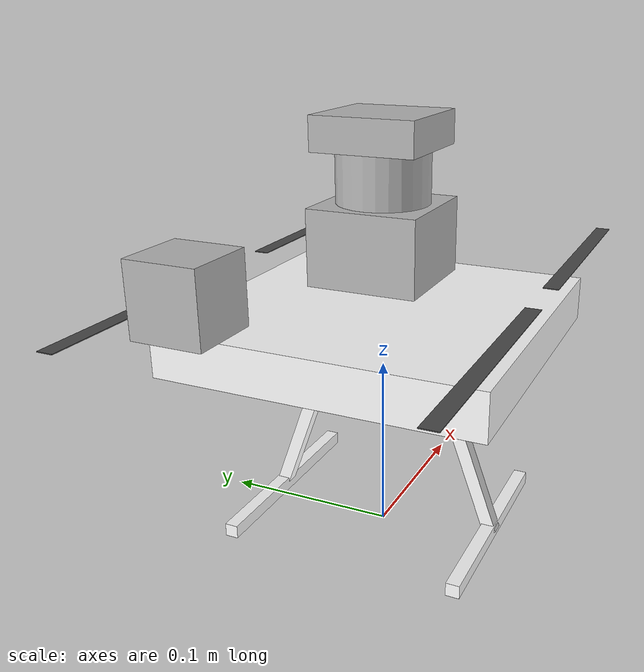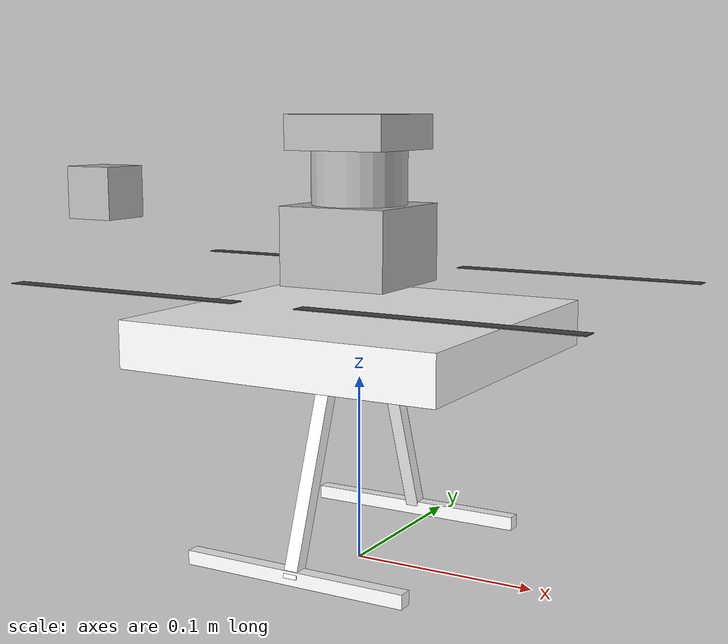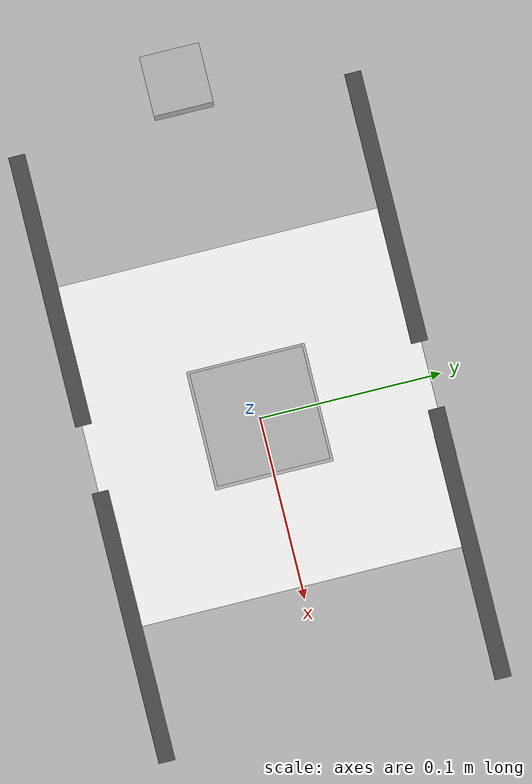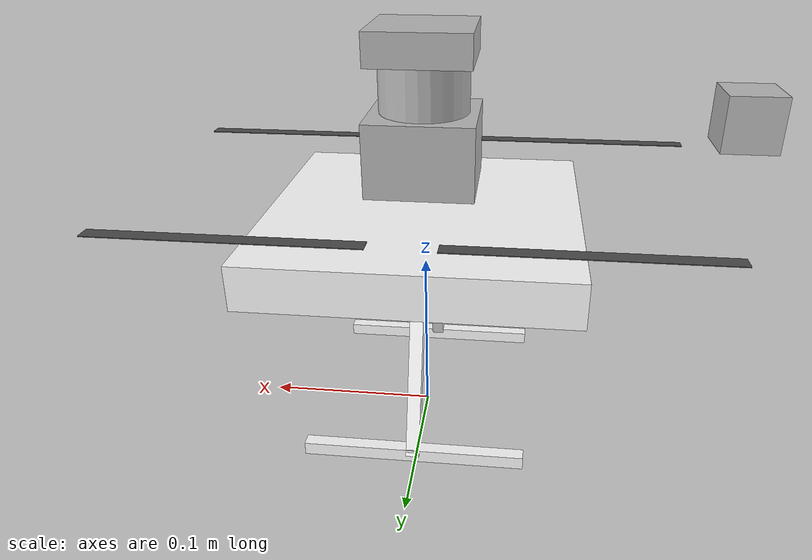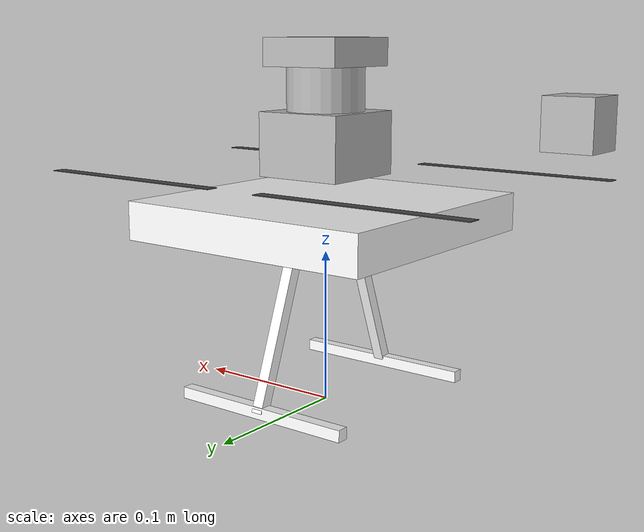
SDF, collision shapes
<?xml version="1.0" encoding="UTF-8"?>
<sdf version='1.9'>
  <model name='x500_euro'>
    <include merge='true'>
      <uri>x500</uri>
    </include>
    <include merge='true'>
      <uri>model://euro_cam</uri>
      <pose> -0.12 0.05 .242 0 1.57 3.14</pose>
    </include>
    <joint name="CameraJoint" type="fixed">
      <parent>base_link</parent>
      <child>euro_cam/base_link</child>
      <pose relative_to="base_link"> -0.12 0.05 .242 0 1.57 3.14</pose>
    </joint>
    <include merge='true'>
      <uri>model://lidar_2d_v2</uri>
      <pose>0 0 0.15 0 0 0</pose>
    </include>
    <joint name="LidarJoint" type="fixed">
      <parent>base_link</parent>
      <child>link</child>
      <pose relative_to="base_link">0 0 0.15 0 0 0</pose>
    </joint>
  </model>
</sdf>

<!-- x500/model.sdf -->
<sdf version='1.9'>
  <model name='x500'>
    <include merge='true'>
      <uri>model://x500_base</uri>
    </include>
    <plugin filename="gz-sim-multicopter-motor-model-system" name="gz::sim::systems::MulticopterMotorModel">
      <jointName>rotor_0_joint</jointName>
      <linkName>rotor_0</linkName>
      <turningDirection>ccw</turningDirection>
      <timeConstantUp>0.0125</timeConstantUp>
      <timeConstantDown>0.025</timeConstantDown>
      <maxRotVelocity>40000.0</maxRotVelocity>
      <motorConstant>8.54858e-06</motorConstant>
      <momentConstant>0.016</momentConstant>
      <commandSubTopic>command/motor_speed</commandSubTopic>
      <motorNumber>0</motorNumber>
      <rotorDragCoefficient>8.06428e-05</rotorDragCoefficient>
      <rollingMomentCoefficient>1e-06</rollingMomentCoefficient>
      <rotorVelocitySlowdownSim>10</rotorVelocitySlowdownSim>
      <motorType>velocity</motorType>
    </plugin>
    <plugin filename="gz-sim-multicopter-motor-model-system" name="gz::sim::systems::MulticopterMotorModel">
      <jointName>rotor_1_joint</jointName>
      <linkName>rotor_1</linkName>
      <turningDirection>ccw</turningDirection>
      <timeConstantUp>0.0125</timeConstantUp>
      <timeConstantDown>0.025</timeConstantDown>
      <maxRotVelocity>40000.0</maxRotVelocity>
      <motorConstant>8.54858e-06</motorConstant>
      <momentConstant>0.016</momentConstant>
      <commandSubTopic>command/motor_speed</commandSubTopic>
      <motorNumber>1</motorNumber>
      <rotorDragCoefficient>8.06428e-05</rotorDragCoefficient>
      <rollingMomentCoefficient>1e-06</rollingMomentCoefficient>
      <rotorVelocitySlowdownSim>10</rotorVelocitySlowdownSim>
      <motorType>velocity</motorType>
    </plugin>
    <plugin filename="gz-sim-multicopter-motor-model-system" name="gz::sim::systems::MulticopterMotorModel">
      <jointName>rotor_2_joint</jointName>
      <linkName>rotor_2</linkName>
      <turningDirection>cw</turningDirection>
      <timeConstantUp>0.0125</timeConstantUp>
      <timeConstantDown>0.025</timeConstantDown>
      <maxRotVelocity>40000.0</maxRotVelocity>
      <motorConstant>8.54858e-06</motorConstant>
      <momentConstant>0.016</momentConstant>
      <commandSubTopic>command/motor_speed</commandSubTopic>
      <motorNumber>2</motorNumber>
      <rotorDragCoefficient>8.06428e-05</rotorDragCoefficient>
      <rollingMomentCoefficient>1e-06</rollingMomentCoefficient>
      <rotorVelocitySlowdownSim>10</rotorVelocitySlowdownSim>
      <motorType>velocity</motorType>
    </plugin>
    <plugin filename="gz-sim-multicopter-motor-model-system" name="gz::sim::systems::MulticopterMotorModel">
      <jointName>rotor_3_joint</jointName>
      <linkName>rotor_3</linkName>
      <turningDirection>cw</turningDirection>
      <timeConstantUp>0.0125</timeConstantUp>
      <timeConstantDown>0.025</timeConstantDown>
      <maxRotVelocity>40000.0</maxRotVelocity>
      <motorConstant>8.54858e-06</motorConstant>
      <momentConstant>0.016</momentConstant>
      <commandSubTopic>command/motor_speed</commandSubTopic>
      <motorNumber>3</motorNumber>
      <rotorDragCoefficient>8.06428e-05</rotorDragCoefficient>
      <rollingMomentCoefficient>1e-06</rollingMomentCoefficient>
      <rotorVelocitySlowdownSim>10</rotorVelocitySlowdownSim>
      <motorType>velocity</motorType>
    </plugin>
  </model>
</sdf>

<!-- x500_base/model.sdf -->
<sdf version='1.9'>
  <model name='x500_base'>
    <pose>0 0 0.12 0 0 0</pose>
    <self_collide>false</self_collide>
    <static>false</static>
    <link name="base_link">
      <inertial>
        <mass>1.0</mass>
        <inertia>
          <ixx>0.005416666666666667</ixx>
          <ixy>0</ixy>
          <ixz>0</ixz>
          <iyy>0.005416666666666667</iyy>
          <iyz>0</iyz>
          <izz>0.010000000000000002</izz>
        </inertia>
      </inertial>
      <gravity>true</gravity>
      <velocity_decay/>
      <visual name="base_link_visual">
        <pose>0 0 0.0125 0 0 3.141592654</pose>
        <geometry>
          <mesh>
            <scale>0.5 0.5 0.5</scale>
            <uri>model://x500_base/meshes/NXP-HGD-CF.dae</uri>
          </mesh>
        </geometry>
      </visual>
      <visual name="5010_motor_base_0">
        <pose>0.087 0.087 0.016 0 0 -0.45</pose>
        <geometry>
          <mesh>
            <scale>0.5 0.5 0.5</scale>
            <uri>model://x500_base/meshes/5010Base.dae</uri>
          </mesh>
        </geometry>
      </visual>
      <visual name="5010_motor_base_1">
        <pose>-0.087 0.087 0.016 0 0 -0.45</pose>
        <geometry>
          <mesh>
            <scale>0.5 0.5 0.5</scale>
            <uri>model://x500_base/meshes/5010Base.dae</uri>
          </mesh>
        </geometry>
      </visual>
      <visual name="5010_motor_base_2">
        <pose>0.087 -0.087 0.016 0 0 -0.45</pose>
        <geometry>
          <mesh>
            <scale>0.5 0.5 0.5</scale>
            <uri>model://x500_base/meshes/5010Base.dae</uri>
          </mesh>
        </geometry>
      </visual>
      <visual name="5010_motor_base_3">
        <pose>-0.087 -0.087 0.016 0 0 -0.45</pose>
        <geometry>
          <mesh>
            <scale>0.5 0.5 0.5</scale>
            <uri>model://x500_base/meshes/5010Base.dae</uri>
          </mesh>
        </geometry>
      </visual>
      <visual name="NXP_FMUK66_FRONT">
        <pose>0.0235 0.0005 0.0215 1 0 1.57</pose>
        <cast_shadows>false</cast_shadows>
        <geometry>
          <plane>
            <normal>0 0 1</normal>
            <size>0.0065 0.0035</size>
          </plane>
        </geometry>
        <material>
          <diffuse>1.0 1.0 1.0</diffuse>
          <specular>1.0 1.0 1.0</specular>
          <pbr>
            <metal>
              <albedo_map>model://x500_base/materials/textures/nxp.png</albedo_map>
            </metal>
          </pbr>
        </material>
      </visual>
      <visual name="NXP_FMUK66_TOP">
        <pose>-0.0115 0 0.02575 0 0 -1.57</pose>
        <cast_shadows>false</cast_shadows>
        <geometry>
          <plane>
            <normal>0 0 1</normal>
            <size>0.0065 0.0035</size>
          </plane>
        </geometry>
        <material>
          <diffuse>1.0 1.0 1.0</diffuse>
          <specular>1.0 1.0 1.0</specular>
          <pbr>
            <metal>
              <albedo_map>model://x500_base/materials/textures/nxp.png</albedo_map>
            </metal>
          </pbr>
        </material>
      </visual>
      <visual name="RDDRONE_FMUK66_TOP">
        <pose>-0.015 0 0.02575 0 0 -1.57</pose>
        <cast_shadows>false</cast_shadows>
        <geometry>
          <plane>
            <normal>0 0 1</normal>
            <size>0.016 0.0017</size>
          </plane>
        </geometry>
        <material>
          <diffuse>1.0 1.0 1.0</diffuse>
          <specular>1.0 1.0 1.0</specular>
          <pbr>
            <metal>
              <albedo_map>model://x500_base/materials/textures/rd.png</albedo_map>
            </metal>
          </pbr>
        </material>
      </visual>
      <collision name="base_link_collision_0">
        <pose>0 0 0.0035 0 0 0</pose>
        <geometry>
          <box>
            <size>0.17677669529663686 0.17677669529663686 0.025</size>
          </box>
        </geometry>
        <surface>
          <contact>
            <ode>
              <min_depth>0.001</min_depth>
              <max_vel>0</max_vel>
            </ode>
          </contact>
          <friction>
            <ode/>
          </friction>
        </surface>
      </collision>
      <collision name="base_link_collision_1">
        <pose>0 -0.049 -0.0615 -0.35 0 0</pose>
        <geometry>
          <box>
            <size>0.0075 0.0075 0.105</size>
          </box>
        </geometry>
        <surface>
          <contact>
            <ode>
              <min_depth>0.001</min_depth>
              <max_vel>0</max_vel>
            </ode>
          </contact>
          <friction>
            <ode/>
          </friction>
        </surface>
      </collision>
      <collision name="base_link_collision_2">
        <pose>0 0.049 -0.0615 0.35 0 0</pose>
        <geometry>
          <box>
            <size>0.0075 0.0075 0.105</size>
          </box>
        </geometry>
        <surface>
          <contact>
            <ode>
              <min_depth>0.001</min_depth>
              <max_vel>0</max_vel>
            </ode>
          </contact>
          <friction>
            <ode/>
          </friction>
        </surface>
      </collision>
      <collision name="base_link_collision_3">
        <pose>0 -0.066 -0.10975 0 0 0</pose>
        <geometry>
          <box>
            <size>0.125 0.0075 0.0075</size>
          </box>
        </geometry>
        <surface>
          <contact>
            <ode>
              <min_depth>0.001</min_depth>
              <max_vel>0</max_vel>
            </ode>
          </contact>
          <friction>
            <ode/>
          </friction>
        </surface>
      </collision>
      <collision name="base_link_collision_4">
        <pose>0 0.066 -0.10975 0 0 0</pose>
        <geometry>
          <box>
            <size>0.125 0.0075 0.0075</size>
          </box>
        </geometry>
        <surface>
          <contact>
            <ode>
              <min_depth>0.001</min_depth>
              <max_vel>0</max_vel>
            </ode>
          </contact>
          <friction>
            <ode/>
          </friction>
        </surface>
      </collision>
      <sensor name="air_pressure_sensor" type="air_pressure">
        <always_on>1</always_on>
        <update_rate>50</update_rate>
        <air_pressure>
          <pressure>
            <noise type="gaussian">
              <mean>0</mean>
              <stddev>0.01</stddev>
            </noise>
          </pressure>
        </air_pressure>
      </sensor>
      <sensor name="imu_sensor" type="imu">
        <always_on>1</always_on>
        <update_rate>250</update_rate>
        <imu>
          <angular_velocity>
            <x>
              <noise type="gaussian">
                <mean>0</mean>
                <stddev>0.00018665</stddev>
                <dynamic_bias_stddev>3.8785e-05</dynamic_bias_stddev>
                <dynamic_bias_correlation_time>1000</dynamic_bias_correlation_time>
              </noise>
            </x>
            <y>
              <noise type="gaussian">
                <mean>0</mean>
                <stddev>0.00018665</stddev>
                <dynamic_bias_stddev>3.8785e-05</dynamic_bias_stddev>
                <dynamic_bias_correlation_time>1000</dynamic_bias_correlation_time>
              </noise>
            </y>
            <z>
              <noise type="gaussian">
                <mean>0</mean>
                <stddev>0.00018665</stddev>
                <dynamic_bias_stddev>3.8785e-05</dynamic_bias_stddev>
                <dynamic_bias_correlation_time>1000</dynamic_bias_correlation_time>
              </noise>
            </z>
          </angular_velocity>
          <linear_acceleration>
            <x>
              <noise type="gaussian">
                <mean>0</mean>
                <stddev>0.00186</stddev>
                <dynamic_bias_stddev>0.006</dynamic_bias_stddev>
                <dynamic_bias_correlation_time>300</dynamic_bias_correlation_time>
              </noise>
            </x>
            <y>
              <noise type="gaussian">
                <mean>0</mean>
                <stddev>0.00186</stddev>
                <dynamic_bias_stddev>0.006</dynamic_bias_stddev>
                <dynamic_bias_correlation_time>300</dynamic_bias_correlation_time>
              </noise>
            </y>
            <z>
              <noise type="gaussian">
                <mean>0</mean>
                <stddev>0.00186</stddev>
                <dynamic_bias_stddev>0.006</dynamic_bias_stddev>
                <dynamic_bias_correlation_time>300</dynamic_bias_correlation_time>
              </noise>
            </z>
          </linear_acceleration>
        </imu>
      </sensor>
      <sensor name="navsat_sensor" type="navsat">
        <always_on>1</always_on>
        <update_rate>30</update_rate>
      </sensor>
    </link>
    <link name="rotor_0">
      <gravity>true</gravity>
      <self_collide>false</self_collide>
      <velocity_decay/>
      <pose>0.087 -0.087 0.03 0 0 0</pose>
      <inertial>
          <mass>0.008038461538461538</mass>
          <inertia>
            <ixx>9.616227620998331e-08</ixx>
            <iyy>6.528962922925001e-06</iyy>
            <izz>6.62464558678501e-06</izz>
          </inertia>
        </inertial>
      <visual name="rotor_0_visual">
        <pose>-0.011 -0.07319230769230769 -0.008 0 0 0</pose>
        <geometry>
          <mesh>
            <scale>0.4230769230769231 0.4230769230769231 0.4230769230769231</scale>
            <uri>model://x500_base/meshes/1345_prop_ccw.stl</uri>
          </mesh>
        </geometry>
        <material>
          <script>
            <name>Gazebo/DarkGrey</name>
            <uri>file://media/materials/scripts/gazebo.material</uri>
          </script>
        </material>
      </visual>
      <visual name="rotor_0_visual_motor_bell">
        <pose>0 0 -0.016 0 0 0</pose>
        <geometry>
          <mesh>
            <scale>0.5 0.5 0.5</scale>
            <uri>model://x500_base/meshes/5010Bell.dae</uri>
          </mesh>
        </geometry>
      </visual>
      <collision name="rotor_0_collision">
        <pose>0 0 0 0 0 0 </pose>
        <geometry>
          <box>
            <size>0.1396153846153846 0.008461538461538461 0.0004230769230769231</size>
          </box>
        </geometry>
        <surface>
          <contact>
            <ode>
              <min_depth>0.001</min_depth>
              <max_vel>0</max_vel>
            </ode>
          </contact>
          <friction>
            <ode/>
          </friction>
        </surface>
      </collision>
    </link>
    <joint name="rotor_0_joint" type="revolute">
      <parent>base_link</parent>
      <child>rotor_0</child>
      <axis>
        <xyz>0 0 1</xyz>
        <limit>
          <lower>-1e+16</lower>
          <upper>1e+16</upper>
        </limit>
        <dynamics>
          <spring_reference>0</spring_reference>
          <spring_stiffness>0</spring_stiffness>
        </dynamics>
      </axis>
    </joint>
    <link name="rotor_1">
      <gravity>true</gravity>
      <self_collide>false</self_collide>
      <velocity_decay/>
      <pose>-0.087 0.087 0.03 0 0 0</pose>
      <inertial>
          <mass>0.008038461538461538</mass>
          <inertia>
            <ixx>9.616227620998331e-08</ixx>
            <iyy>6.528962922925001e-06</iyy>
            <izz>6.62464558678501e-06</izz>
          </inertia>
        </inertial>
      <visual name="rotor_1_visual">
        <pose>-0.011 -0.07319230769230769 -0.008 0 0 0</pose>
        <geometry>
          <mesh>
            <scale>0.4230769230769231 0.4230769230769231 0.4230769230769231</scale>
            <uri>model://x500_base/meshes/1345_prop_ccw.stl</uri>
          </mesh>
        </geometry>
        <material>
          <script>
            <name>Gazebo/DarkGrey</name>
            <uri>file://media/materials/scripts/gazebo.material</uri>
          </script>
        </material>
      </visual>
      <visual name="rotor_1_visual_motor_top">
        <pose>0 0 -0.016 0 0 0</pose>
        <geometry>
          <mesh>
            <scale>0.5 0.5 0.5</scale>
            <uri>model://x500_base/meshes/5010Bell.dae</uri>
          </mesh>
        </geometry>
      </visual>
      <collision name="rotor_1_collision">
        <pose>0 0 0 0 0 0 </pose>
        <geometry>
          <box>
            <size>0.1396153846153846 0.008461538461538461 0.0004230769230769231</size>
          </box>
        </geometry>
        <surface>
          <contact>
            <ode>
              <min_depth>0.001</min_depth>
              <max_vel>0</max_vel>
            </ode>
          </contact>
          <friction>
            <ode/>
          </friction>
        </surface>
      </collision>
    </link>
    <joint name="rotor_1_joint" type="revolute">
      <parent>base_link</parent>
      <child>rotor_1</child>
      <axis>
        <xyz>0 0 1</xyz>
        <limit>
          <lower>-1e+16</lower>
          <upper>1e+16</upper>
        </limit>
        <dynamics>
          <spring_reference>0</spring_reference>
          <spring_stiffness>0</spring_stiffness>
        </dynamics>
      </axis>
    </joint>
    <link name="rotor_2">
      <gravity>true</gravity>
      <self_collide>false</self_collide>
      <velocity_decay/>
      <pose>0.087 0.087 0.03 0 0 0</pose>
      <inertial>
          <mass>0.008038461538461538</mass>
          <inertia>
            <ixx>9.616227620998331e-08</ixx>
            <iyy>6.528962922925001e-06</iyy>
            <izz>6.62464558678501e-06</izz>
          </inertia>
        </inertial>
      <visual name="rotor_2_visual">
        <pose>-0.011 -0.07319230769230769 -0.008 0 0 0</pose>
        <geometry>
          <mesh>
            <scale>0.4230769230769231 0.4230769230769231 0.4230769230769231</scale>
            <uri>model://x500_base/meshes/1345_prop_cw.stl</uri>
          </mesh>
        </geometry>
        <material>
          <script>
            <name>Gazebo/DarkGrey</name>
            <uri>file://media/materials/scripts/gazebo.material</uri>
          </script>
        </material>
      </visual>
      <visual name="rotor_2_visual_motor_top">
        <pose>0 0 -0.016 0 0 0</pose>
        <geometry>
          <mesh>
            <scale>0.5 0.5 0.5</scale>
            <uri>model://x500_base/meshes/5010Bell.dae</uri>
          </mesh>
        </geometry>
      </visual>
      <collision name="rotor_2_collision">
        <pose>0 0 0 0 0 0 </pose>
        <geometry>
          <box>
            <size>0.1396153846153846 0.008461538461538461 0.0004230769230769231</size>
          </box>
        </geometry>
        <surface>
          <contact>
            <ode>
              <min_depth>0.001</min_depth>
              <max_vel>0</max_vel>
            </ode>
          </contact>
          <friction>
            <ode/>
          </friction>
        </surface>
      </collision>
    </link>
    <joint name="rotor_2_joint" type="revolute">
      <parent>base_link</parent>
      <child>rotor_2</child>
      <axis>
        <xyz>0 0 1</xyz>
        <limit>
          <lower>-1e+16</lower>
          <upper>1e+16</upper>
        </limit>
        <dynamics>
          <spring_reference>0</spring_reference>
          <spring_stiffness>0</spring_stiffness>
        </dynamics>
      </axis>
    </joint>
    <link name="rotor_3">
      <gravity>true</gravity>
      <self_collide>false</self_collide>
      <velocity_decay/>
      <pose>-0.087 -0.087 0.03 0 0 0</pose>
      <inertial>
          <mass>0.008038461538461538</mass>
          <inertia>
            <ixx>9.616227620998331e-08</ixx>
            <iyy>6.528962922925001e-06</iyy>
            <izz>6.62464558678501e-06</izz>
          </inertia>
        </inertial>
      <visual name="rotor_3_visual">
        <pose>-0.011 -0.07319230769230769 -0.008 0 0 0</pose>
        <geometry>
          <mesh>
            <scale>0.4230769230769231 0.4230769230769231 0.4230769230769231</scale>
            <uri>model://x500_base/meshes/1345_prop_cw.stl</uri>
          </mesh>
        </geometry>
        <material>
          <script>
            <name>Gazebo/DarkGrey</name>
            <uri>file://media/materials/scripts/gazebo.material</uri>
          </script>
        </material>
      </visual>
      <visual name="rotor_3_visual_motor_top">
        <pose>0 0 -0.016 0 0 0</pose>
        <geometry>
          <mesh>
            <scale>0.5 0.5 0.5</scale>
            <uri>model://x500_base/meshes/5010Bell.dae</uri>
          </mesh>
        </geometry>
      </visual>
      <collision name="rotor_3_collision">
        <pose>0 0 0 0 0 0 </pose>
        <geometry>
          <box>
            <size>0.1396153846153846 0.008461538461538461 0.0004230769230769231</size>
          </box>
        </geometry>
        <surface>
          <contact>
            <ode>
              <min_depth>0.001</min_depth>
              <max_vel>0</max_vel>
            </ode>
          </contact>
          <friction>
            <ode/>
          </friction>
        </surface>
      </collision>
    </link>
    <joint name="rotor_3_joint" type="revolute">
      <parent>base_link</parent>
      <child>rotor_3</child>
      <axis>
        <xyz>0 0 1</xyz>
        <limit>
          <lower>-1e+16</lower>
          <upper>1e+16</upper>
        </limit>
        <dynamics>
          <spring_reference>0</spring_reference>
          <spring_stiffness>0</spring_stiffness>
        </dynamics>
      </axis>
    </joint>
  </model>
</sdf>

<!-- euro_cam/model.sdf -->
<sdf version="1.9">
  <model name="camera">
    <pose>4 0 1.0 0 0 3.14</pose>
    <link name="euro_cam/base_link">
      <pose>0.05 0.05 0.05 0 0 0</pose>
      <inertial>
        <mass>0.01</mass>
        <inertia>
          <ixx>0.000166667</ixx>
          <iyy>0.000166667</iyy>
          <izz>0.000166667</izz>
        </inertia>
      </inertial>
      <collision name="collision">
        <geometry>
          <box>
            <size>0.03 0.03 0.03</size>
          </box>
        </geometry>
      </collision>
      <visual name="visual">
        <geometry>
          <box>
            <size>0.03 0.03 0.03</size>
          </box>
        </geometry>
      </visual>
      <sensor name="imager" type="camera">
        <camera>
          <horizontal_fov>1.0856</horizontal_fov>
          <image>
            <width>640</width>
            <height>480</height>
          </image>
          <clip>
            <near>0.1</near>
            <far>100</far>
          </clip>
        </camera>
        <always_on>1</always_on>
        <update_rate>30</update_rate>
        <visualize>true</visualize>
        <topic>camera/image_raw</topic>
      </sensor>
    </link>
  </model>
</sdf>

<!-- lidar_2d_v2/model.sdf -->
<sdf version="1.6">
  <model name="lidar_2d_v2">
    <link name="link">
      <pose>0 0 0 0 0 0</pose>
      <inertial>
        <pose>0 0 0.0435 0 0 0</pose>
        <mass>0.37</mass>
        <inertia>
          <ixx>0.00034437749999999994</ixx>
          <ixy>0</ixy>
          <ixz>0</ixz>
          <iyy>0.00034437749999999994</iyy>
          <iyz>0</iyz>
          <izz>0.00022199999999999998</izz>
        </inertia>
      </inertial>
      <collision name="collision_base">
        <pose>0 0 0.0205 0 0 0</pose>
        <geometry>
          <box>
            <size>0.06 0.06 0.041</size>
          </box>-
        </geometry>
      </collision>
      <collision name="collision_mid">
        <pose>0 0 0.055 0 0 0</pose>
        <geometry>
          <cylinder>
            <radius>0.025</radius>
            <length>0.028</length>
          </cylinder>
        </geometry>
      </collision>
      <collision name="collision_top">
        <pose>0 0 0.078 0 0 0</pose>
        <geometry>
          <box>
            <size>0.056 0.056 0.018</size>
          </box>
        </geometry>
      </collision>
      <visual name="visual">
        <geometry>
          <mesh>
            <uri>model://lidar_2d_v2/meshes/lidar_2d_v2.dae</uri>
          </mesh>
        </geometry>
      </visual>
<sensor name='lidar_1d_down' type='gpu_lidar'>
  <!-- No need to rotate the sensor, as the vertical scan handles the downward direction -->
  <pose relative_to='lidar_frame'>0 0 0 0 0 0</pose>

  <!-- Topic on which the LiDAR data will be published -->
  <topic>lidar_down</topic>

  <!-- Sensor will update at 10 Hz -->
  <update_rate>10</update_rate>

  <ray>
    <scan>
      <horizontal>
        <!-- Only 1 horizontal sample since we're scanning in the vertical direction -->
        <samples>1</samples>
        <resolution>1</resolution>
        <min_angle>0</min_angle>
        <max_angle>0</max_angle>
      </horizontal>

      <vertical>
        <!-- Define the vertical scan with one ray pointing downward -->
        <samples>1</samples>
        <resolution>1</resolution>
        <!-- Make the vertical scan point downwards -->
        <min_angle>-1.5708</min_angle> <!-- -90 degrees (downwards) -->
        <max_angle>-1.5708</max_angle> <!-- No angular sweep, single point -->
      </vertical>
    </scan>

    <range>
      <min>0.01</min>
      <max>10.0</max>
      <resolution>0.01</resolution>
    </range>
  </ray>

  <!-- Sensor will always be on and the visualization is enabled in the Gazebo GUI -->
  <always_on>1</always_on>
  <visualize>true</visualize>
</sensor>

    </link>
  </model>
</sdf>
